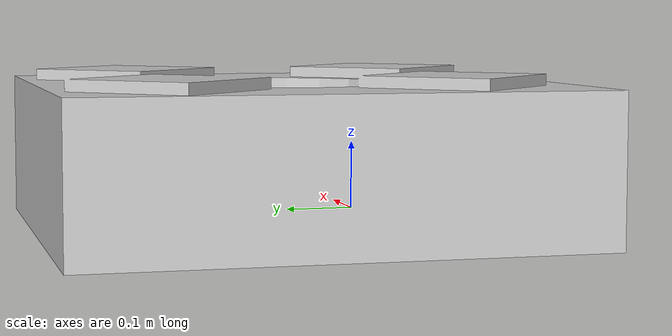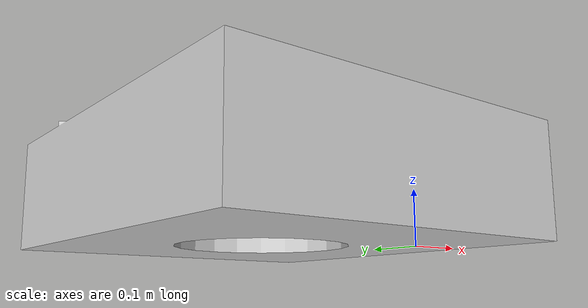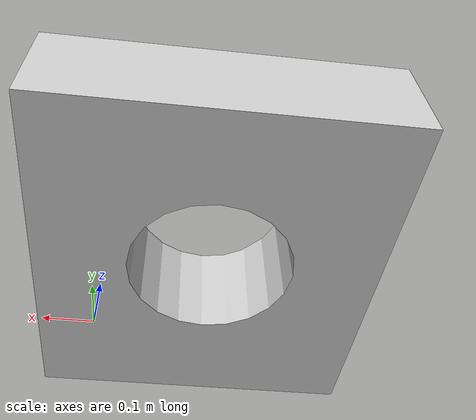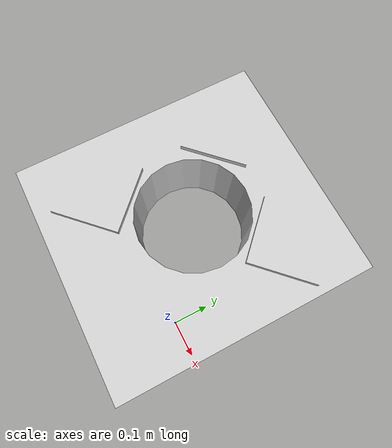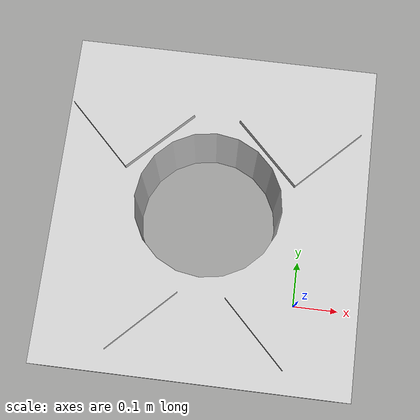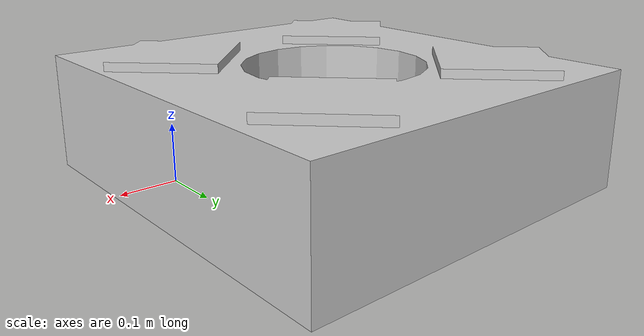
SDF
<?xml version='1.0'?>
<sdf version='1.6'>
  <model name='landing_station'>
    <link name='main'>
    <pose frame=''>0 0 0 0 0 0</pose>
      <visual name='main_st'>
        <geometry>
          <mesh>
            <scale>10.0 10.0 10.0</scale>
            <uri>model://landing_station/meshes/landing_station.dae</uri>
          </mesh>
        </geometry>
      </visual>
     </link>
    <static>1</static>
  </model>
</sdf>
